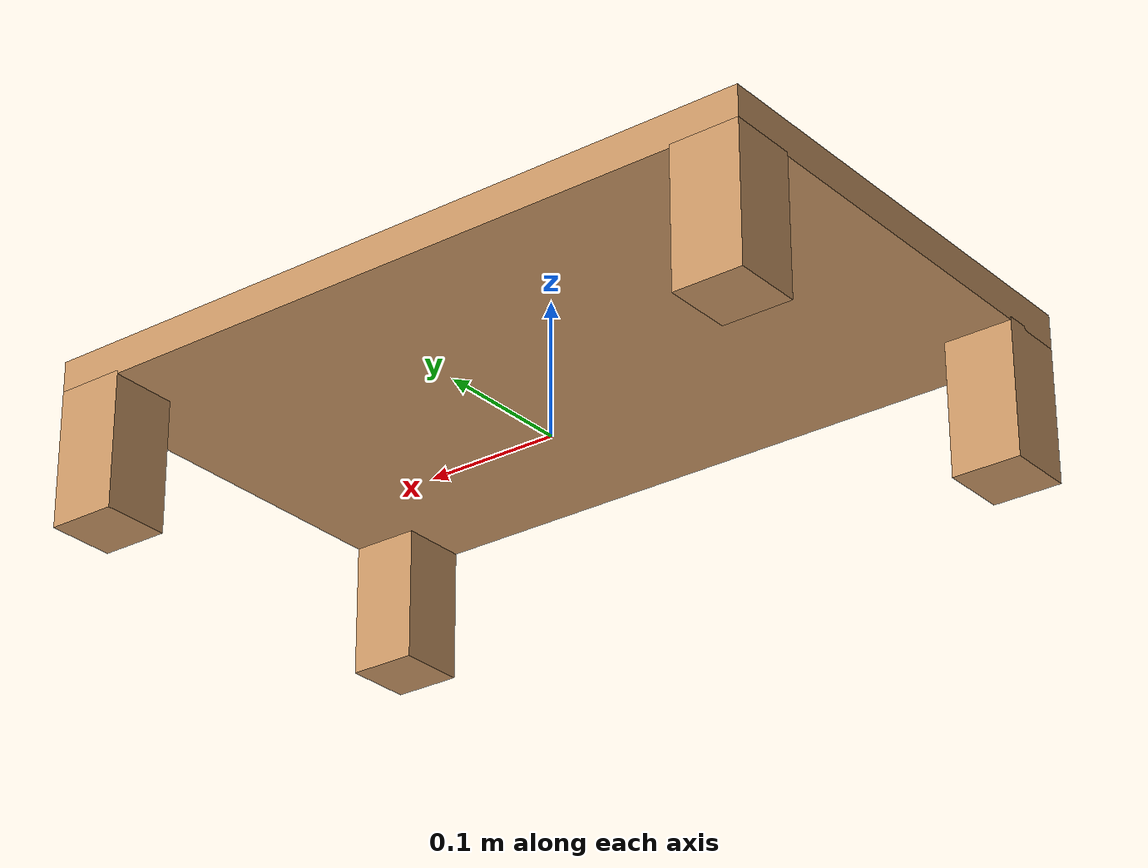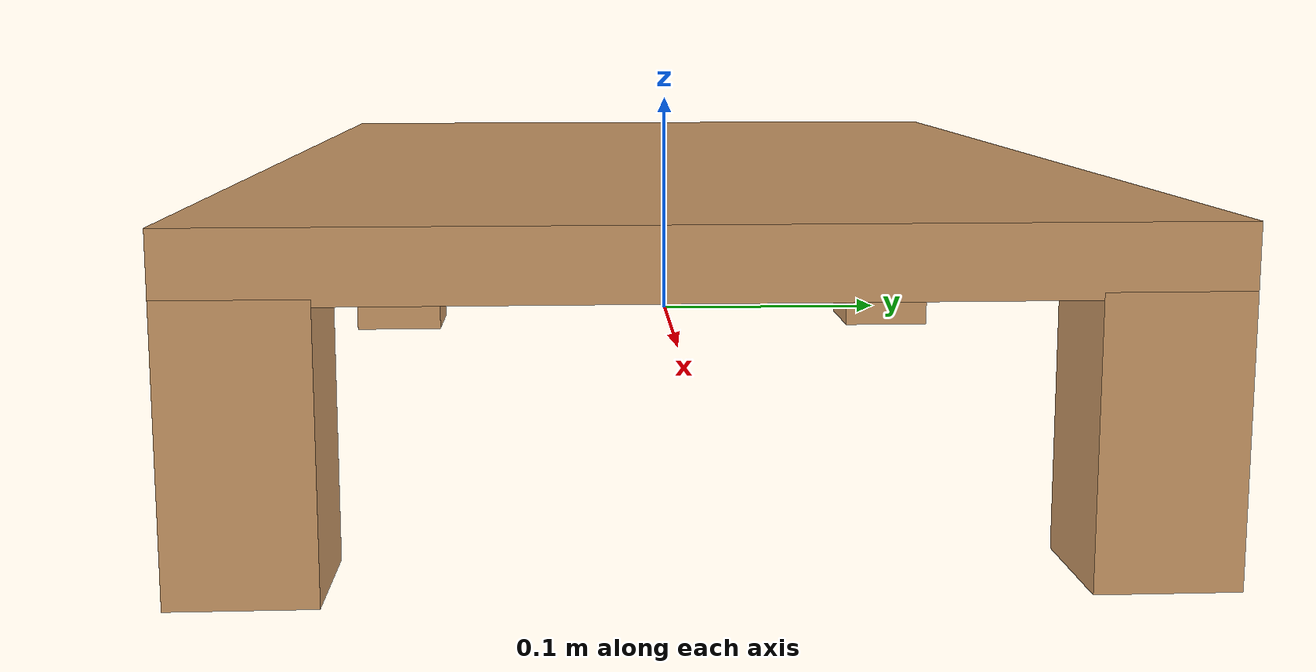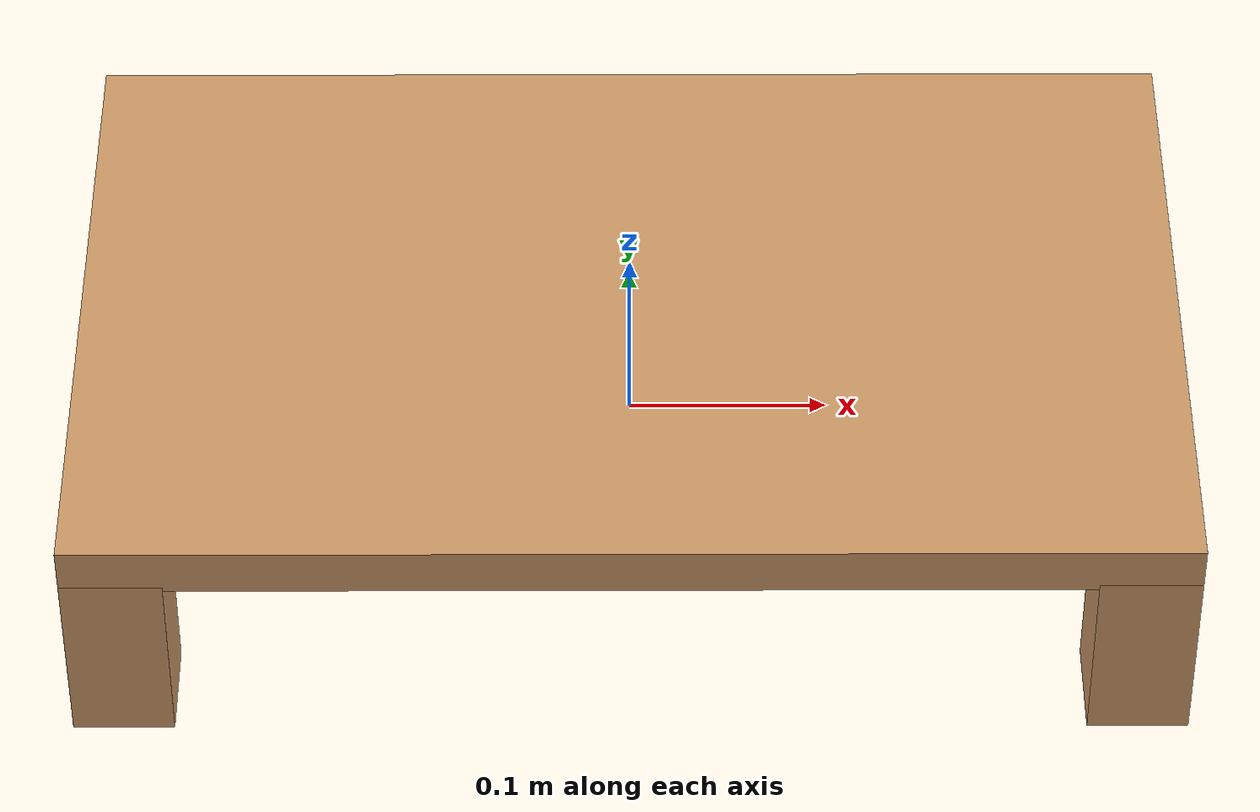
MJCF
<mujoco model="table_asset">
    <worldbody>
        <body name="table" pos="0 0 0">
            <!-- Legs -->
            <body name="bottom left" pos="-0.25 -0.15 0">
                <geom type="box" size="0.025 0.025 0.05" rgba="0.8 0.6 0.4 1"/>
            </body>

            <body name="top left" pos="-0.25 0.15 0">
                <geom type="box" size="0.025 0.025 0.05" rgba="0.8 0.6 0.4 1"/>
            </body>

            <body name="bottom right" pos="0.25 -0.15 0">
                <geom type="box" size="0.025 0.025 0.05" rgba="0.8 0.6 0.4 1"/>
            </body>

            <body name="top right" pos="0.25 0.15 0">
                <geom type="box" size="0.025 0.025 0.05" rgba="0.8 0.6 0.4 1"/>
            </body>

            <!-- flat top -->

            <body name="table top" pos="0 0 0.06">
                <geom type="box" size = "0.275 0.175 0.0125" rgba="0.8 0.6 0.4 1"/>
            </body>

        </body>

    </worldbody>
</mujoco>
